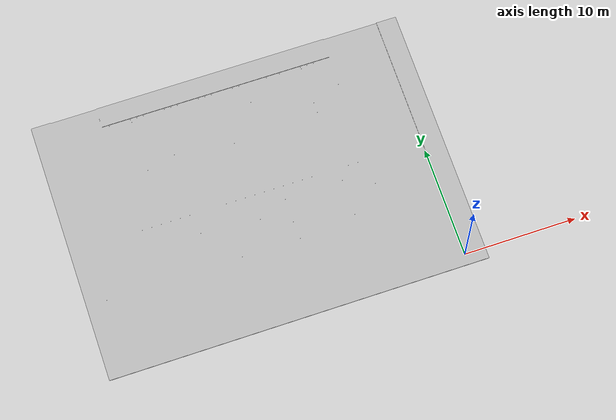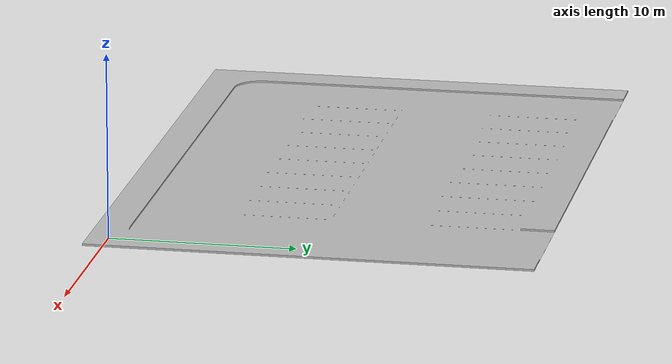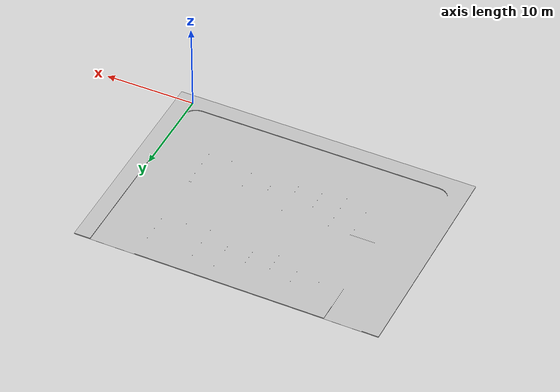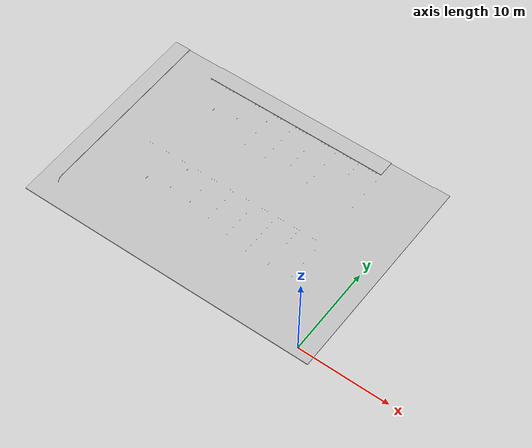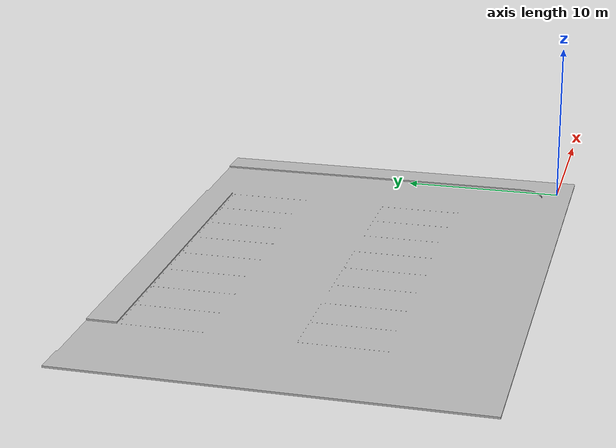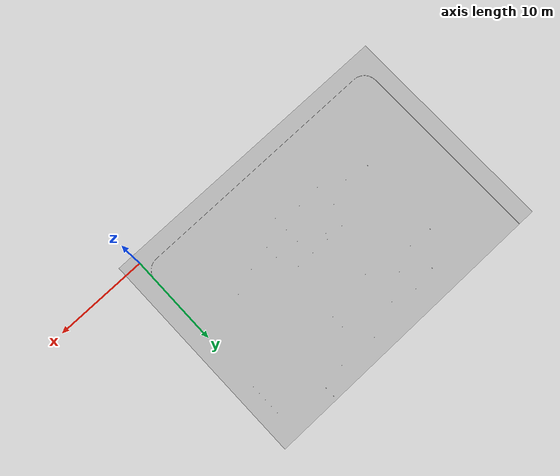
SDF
<?xml version="1.0" ?>
<sdf version="1.6">
    <world name="default">
        <gravity>0 0 0</gravity>

        <physics name="1ms" type="ode">
            <max_step_size>0.005</max_step_size>
            <real_time_factor>1.0</real_time_factor>
        </physics>

        <include>
            <uri>model://sun</uri>
        </include>

        <model name="estacionamiento">
            <static>true</static>
            <link name="link">
                <collision name='collision'>
                    <pose>0 0 0 0 0 0</pose>
                    <geometry>
                        <mesh>
                            <uri>file:///visualizacion/models/estacionamiento/meshes/estacionamiento.obj</uri>
                        </mesh>
                    </geometry>
                </collision>
                <visual name='visual'>
                    <geometry>
                        <mesh>
                            <uri>file:///visualizacion/models/estacionamiento/meshes/estacionamiento.obj</uri>
                        </mesh>
                    </geometry>
                </visual>
                <pose>0 0 0 0 0 0 </pose>
                <inertial>
                    <pose>0 0 0 0 0 0 </pose>
                    <mass>1</mass>
                    <inertia>
                        <ixx>1</ixx>
                        <ixy>0</ixy>
                        <ixz>0</ixz>
                        <iyy>1</iyy>
                        <iyz>0</iyz>
                        <izz>1</izz>
                    </inertia>
                </inertial>
            </link>
            <pose>0 -1 0.1 0 0 0</pose>
            <self_collide>false</self_collide>
        </model>

        <scene>
            <ambient>0.2 0.2 0.2 0.3</ambient>
            <background>0 0.1 0.2 0.3</background>
            <shadows>true</shadows>
            <fog>
                <color>0.1 0.1 0.1 0.2</color>
                <type>linear</type>
                <start>0.1</start>
                <end>30</end>
            </fog>
        </scene>

        <plugin filename="ignition-gazebo-physics-system" name="ignition::gazebo::systems::Physics" />
        <plugin filename="ignition-gazebo-user-commands-system" name="ignition::gazebo::systems::UserCommands" />
        <plugin filename="ignition-gazebo-scene-broadcaster-system" name="ignition::gazebo::systems::SceneBroadcaster" />
        <plugin filename="ignition-gazebo-sensors-system" name="ignition::gazebo::systems::Sensors">
            <render_engine>ogre2</render_engine>
        </plugin>

        <plugin filename="libignition-gazebo-imu-system.so" name="ignition::gazebo::systems::Imu"></plugin>
        <plugin filename="libignition-gazebo-magnetometer-system.so" name="ignition::gazebo::systems::Magnetometer"></plugin>
        <plugin filename="libignition-gazebo-navsat-system.so" name="ignition::gazebo::systems::NavSat"></plugin>
        <plugin filename="libignition-gazebo-air-pressure-system.so" name="ignition::gazebo::systems::AirPressure"></plugin>
        <plugin filename="gz-sim-sensors-system" name="gz::sim::systems::Sensors">
            <render_engine>ogre2</render_engine>
        </plugin>
    </world>
</sdf>
